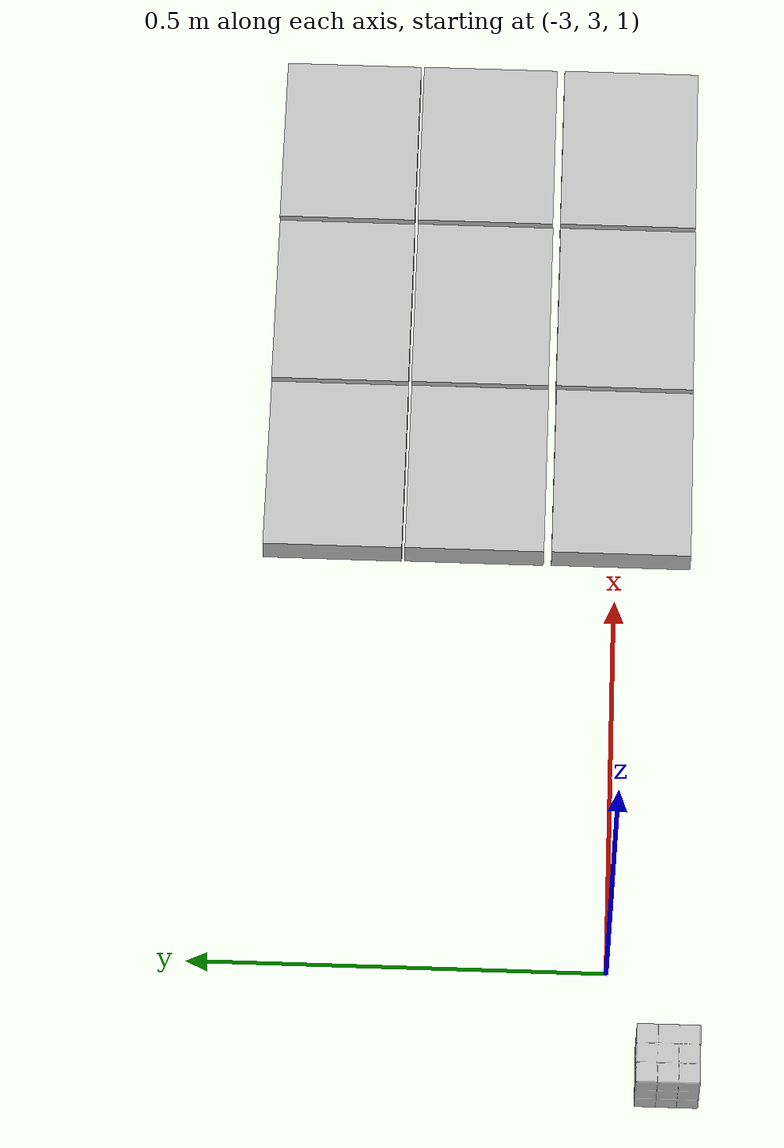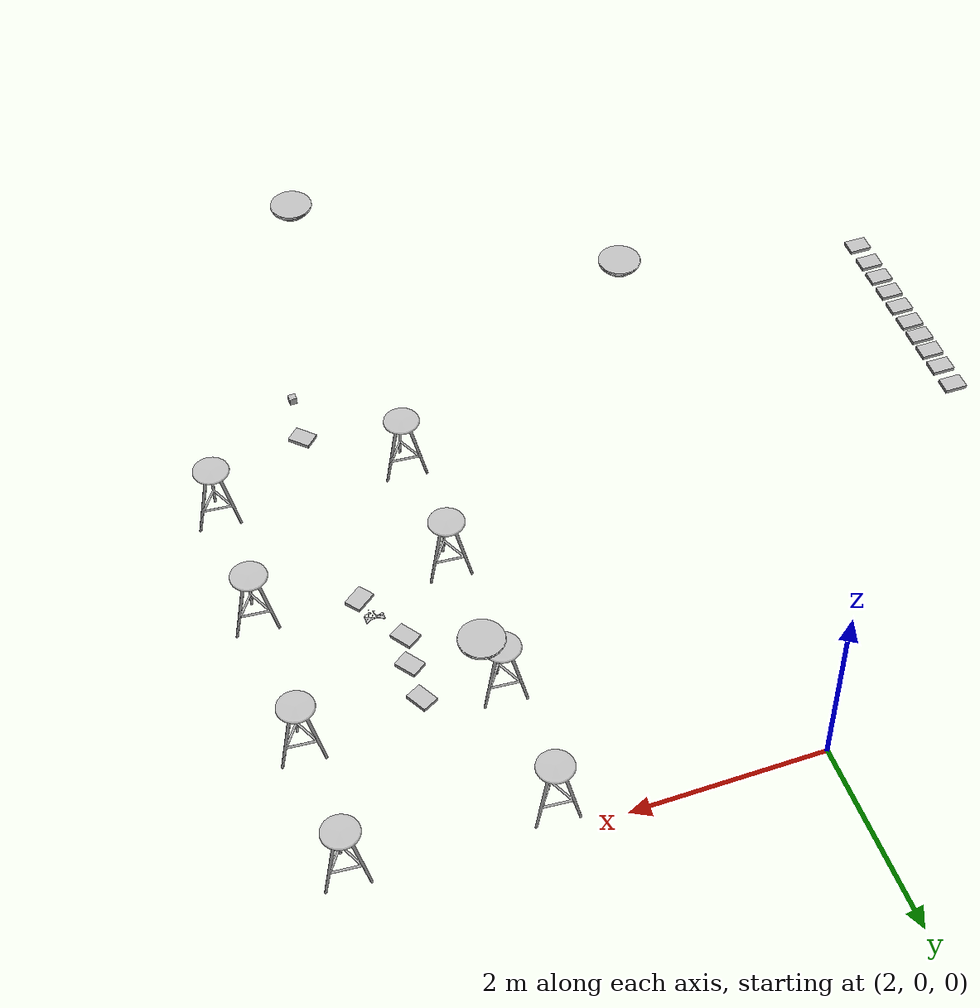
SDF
<sdf version="1.9">
 <world name="default">
  <gravity>0 0 -9.8</gravity>
  <magnetic_field>6e-06 2.3e-05 -4.2e-05</magnetic_field>
  <atmosphere type="adiabatic"/>
  <physics name="default_physics" type="dart">
   <max_step_size>0.001</max_step_size>
   <real_time_factor>1</real_time_factor>
   <real_time_update_rate>1000</real_time_update_rate>
  </physics>
  <scene>
   <ambient>0.4 0.4 0.4 1</ambient>
   <background>0.7 0.7 0.7 1</background>
   <shadows>1</shadows>
   <grid>false</grid>
   <origin_visual>false</origin_visual>
  </scene>
  <spherical_coordinates>
   <surface_model>EARTH_WGS84</surface_model>
   <latitude_deg>0</latitude_deg>
   <longitude_deg>0</longitude_deg>
   <elevation>0</elevation>
   <heading_deg>0</heading_deg>
  </spherical_coordinates>
  <model name="Bicycle_01_001">
   <include><uri>model://aws_robomaker_retail_Bicycle_01</uri></include>
   <pose>5.681248 -2.242451 0.931246 0.000002 -0.000024 0</pose>
  </model>
  <model name="BookE_01_001">
   <include><uri>model://aws_robomaker_retail_BookE_01</uri></include>
   <pose>5.476534 -1.932532 0.948933 0.000004 0.000001 -2.543521</pose>
  </model>
  <model name="BookE_01_002">
   <include><uri>model://aws_robomaker_retail_BookE_01</uri></include>
   <pose>-5.414000 3.330672 0.934015 -0.000001 -0.000001 -1.541094</pose>
  </model>
  <model name="BookE_01_003">
   <include><uri>model://aws_robomaker_retail_BookE_01</uri></include>
   <pose>5.552553 -1.214211 0.948933 0.000004 -0.000001 -2.654312</pose>
  </model>
  <model name="BookE_01_004">
   <include><uri>model://aws_robomaker_retail_BookE_01</uri></include>
   <pose>5.677231 -4.649203 0.946394 0.000100 0.000006 -2.355752</pose>
  </model>
  <model name="BookE_01_005">
   <include><uri>model://aws_robomaker_retail_BookE_01</uri></include>
   <pose>5.538150 -1.610317 0.948933 0 0 -2.526901</pose>
  </model>
  <model name="BookE_01_006">
   <include><uri>model://aws_robomaker_retail_BookE_01</uri></include>
   <pose>-1.889425 3.346395 1.054941 0 0 1.568157</pose>
  </model>
  <model name="BookE_01_007">
   <include><uri>model://aws_robomaker_retail_BookE_01</uri></include>
   <pose>-2.123726 3.346395 1.054941 0 0 1.568157</pose>
  </model>
  <model name="BookE_01_008">
   <include><uri>model://aws_robomaker_retail_BookE_01</uri></include>
   <pose>-5.315121 1.771952 0.955242 3.141243 -0.072268 -2.526906</pose>
  </model>
  <model name="BookE_01_009">
   <include><uri>model://aws_robomaker_retail_BookE_01</uri></include>
   <pose>1.170199 1.196251 343582.718718 0.002241 -0.001100 -0.623328</pose>
  </model>
  <model name="BookE_01_010">
   <include><uri>model://aws_robomaker_retail_BookE_01</uri></include>
   <pose>-5.503415 1.012063 0.941463 0 0 -1.568440</pose>
  </model>
  <model name="BookE_01_011">
   <include><uri>model://aws_robomaker_retail_BookE_01</uri></include>
   <pose>5.749231 -2.492018 0.948933 0.000002 0.000001 2.223394</pose>
  </model>
  <model name="BookE_01_012">
   <include><uri>model://aws_robomaker_retail_BookE_01</uri></include>
   <pose>-5.333584 0.186186 0.949316 -0.000001 -0.004549 -2.798485</pose>
  </model>
  <model name="BookE_01_013">
   <include><uri>model://aws_robomaker_retail_BookE_01</uri></include>
   <pose>-5.403906 2.650881 0.931119 0.021204 -0.000001 -2.355751</pose>
  </model>
  <model name="BookE_01_014">
   <include><uri>model://aws_robomaker_retail_BookE_01</uri></include>
   <pose>-1.889425 2.993687 1.054941 0 0 1.568157</pose>
  </model>
  <model name="BookE_01_015">
   <include><uri>model://aws_robomaker_retail_BookE_01</uri></include>
   <pose>-2.123726 2.993687 1.054941 0 0 1.568157</pose>
  </model>
  <model name="BookE_01_016">
   <include><uri>model://aws_robomaker_retail_BookE_01</uri></include>
   <pose>-2.357369 2.993687 1.054941 0 0 1.568157</pose>
  </model>
  <model name="BookE_01_017">
   <include><uri>model://aws_robomaker_retail_BookE_01</uri></include>
   <pose>-1.889425 3.172920 1.054941 0 0 1.568157</pose>
  </model>
  <model name="BookE_01_018">
   <include><uri>model://aws_robomaker_retail_BookE_01</uri></include>
   <pose>-2.123726 3.172920 1.054941 0 0 1.568157</pose>
  </model>
  <model name="BookE_01_019">
   <include><uri>model://aws_robomaker_retail_BookE_01</uri></include>
   <pose>-2.357369 3.172920 1.054941 0 0 1.568157</pose>
  </model>
  <model name="BookE_01_020">
   <include><uri>model://aws_robomaker_retail_BookE_01</uri></include>
   <pose>-0.694312 -3.530823 1.053825 0.000004 -0.000004 -1.573382</pose>
  </model>
  <model name="BookE_01_021">
   <include><uri>model://aws_robomaker_retail_BookE_01</uri></include>
   <pose>-0.694312 -3.760511 1.053825 0.000004 -0.000004 -1.573382</pose>
  </model>
  <model name="BookE_01_022">
   <include><uri>model://aws_robomaker_retail_BookE_01</uri></include>
   <pose>-0.694312 -3.980472 1.053825 0.000004 -0.000004 -1.573382</pose>
  </model>
  <model name="BookE_01_023">
   <include><uri>model://aws_robomaker_retail_BookE_01</uri></include>
   <pose>-0.694312 -4.221891 1.053825 0.000004 -0.000004 -1.573382</pose>
  </model>
  <model name="BookE_01_024">
   <include><uri>model://aws_robomaker_retail_BookE_01</uri></include>
   <pose>-0.694312 -4.461891 1.053825 0.000004 -0.000004 -1.573382</pose>
  </model>
  <model name="BookE_01_025">
   <include><uri>model://aws_robomaker_retail_BookE_01</uri></include>
   <pose>-0.694312 -4.701891 1.053825 0.000004 -0.000004 -1.573382</pose>
  </model>
  <model name="BookE_01_026">
   <include><uri>model://aws_robomaker_retail_BookE_01</uri></include>
   <pose>-0.694312 -4.941891 1.053825 0.000004 -0.000004 -1.573382</pose>
  </model>
  <model name="BookE_01_027">
   <include><uri>model://aws_robomaker_retail_BookE_01</uri></include>
   <pose>-0.694312 -5.221891 1.053825 0.000004 -0.000004 -1.573382</pose>
  </model>
  <model name="BookE_01_028">
   <include><uri>model://aws_robomaker_retail_BookE_01</uri></include>
   <pose>-0.694312 -3.291891 1.053825 0.000004 -0.000004 -1.573382</pose>
  </model>
  <model name="BookE_01_029">
   <include><uri>model://aws_robomaker_retail_BookE_01</uri></include>
   <pose>-0.694312 -3.021891 1.053825 0.000004 -0.000004 -1.573382</pose>
  </model>
  <model name="BookE_01_030">
   <include><uri>model://aws_robomaker_retail_BookE_01</uri></include>
   <pose>-2.357369 3.346395 1.054941 0 0 1.568157</pose>
  </model>
  <model name="ChairB_01_001">
   <include><uri>model://aws_robomaker_retail_ChairB_01</uri></include>
   <pose>6.6439554 -0.210457 0.0220513 0 0.006174 0.000088</pose>
  </model>
  <model name="ChairB_01_002">
   <include><uri>model://aws_robomaker_retail_ChairB_01</uri></include>
   <pose>6.6439554 -1.621987 0.0220513 0 0.006174 0.000088</pose>
  </model>
  <model name="ChairB_01_003">
   <include><uri>model://aws_robomaker_retail_ChairB_01</uri></include>
   <pose>6.6439554 -3.246633 0.0220513 0 0.006174 0.000088</pose>
  </model>
  <model name="ChairB_01_004">
   <include><uri>model://aws_robomaker_retail_ChairB_01</uri></include>
   <pose>6.6439554 -4.681600 0.0220513 0 0.006174 0.000088</pose>
  </model>
  <model name="ChairB_01_005">
   <include><uri>model://aws_robomaker_retail_ChairB_01</uri></include>
   <pose>4.653303 -0.210457 0.0220513 0 0.006174 0.000088</pose>
  </model>
  <model name="ChairB_01_006">
   <include><uri>model://aws_robomaker_retail_ChairB_01</uri></include>
   <pose>4.653303 -1.621987 0.0220513 0 0.006174 0.000088</pose>
  </model>
  <model name="ChairB_01_007">
   <include><uri>model://aws_robomaker_retail_ChairB_01</uri></include>
   <pose>4.653303 -3.246633 0.0220513 0 0.006174 0.000088</pose>
  </model>
  <model name="ChairB_01_008">
   <include><uri>model://aws_robomaker_retail_ChairB_01</uri></include>
   <pose>4.653303 -4.681600 0.0220513 0 0.006174 0.000088</pose>
  </model>
  <model name="ChairB_01_009">
   <include><uri>model://aws_robomaker_retail_ChairB_01</uri></include>
   <pose>-4.602947 5.021919 0.030259 -0.001073 -0.001935 0.001439</pose>
  </model>
  <model name="ChairB_01_010">
   <include><uri>model://aws_robomaker_retail_ChairB_01</uri></include>
   <pose>-6.109693 5.026245 0.027274 -0.001422 -0.002424 0.000176</pose>
  </model>
  <model name="ChairB_01_011">
   <include><uri>model://aws_robomaker_retail_ChairB_01</uri></include>
   <pose>-4.616166 3.276753 0.0321 -0.001068 -0.001938 0.000117</pose>
  </model>
  <model name="ChairB_01_012">
   <include><uri>model://aws_robomaker_retail_ChairB_01</uri></include>
   <pose>-6.090762 3.293415 0.029216 -0.001072 -0.001936 0.000119</pose>
  </model>
  <model name="ChairB_01_013">
   <include><uri>model://aws_robomaker_retail_ChairB_01</uri></include>
   <pose>-4.589604 1.815766 0.032459 0.001362 -0.001944 0.000145</pose>
  </model>
  <model name="ChairB_01_014">
   <include><uri>model://aws_robomaker_retail_ChairB_01</uri></include>
   <pose>-6.130103 1.798599 0.02944 0.001362 -0.001946 0.000105</pose>
  </model>
  <model name="ChairB_01_015">
   <include><uri>model://aws_robomaker_retail_ChairB_01</uri></include>
   <pose>-4.607505 0.203637 0.030218 0.001362 -0.001944 0.000163</pose>
  </model>
  <model name="ChairB_01_016">
   <include><uri>model://aws_robomaker_retail_ChairB_01</uri></include>
   <pose>-6.121492 0.195027 0.027272 0.001357 -0.001950 0.003291</pose>
  </model>
  <model name="Computer_01_001">
   <include><uri>model://aws_robomaker_retail_Computer_01</uri></include>
   <pose>0.284724 4.951315 1.08517 -0.004006 -0.000097 -0.010660</pose>
  </model>
  <model name="LightA_01_001">
   <include><uri>model://aws_robomaker_retail_LightA_01</uri></include>
   <pose>2.774418 -3.628150 3.150329 0 -0 0</pose>
  </model>
  <model name="LightA_01_002">
   <include><uri>model://aws_robomaker_retail_LightA_01</uri></include>
   <pose>5.383991 -5.383710 3.150328 0 -0 0</pose>
  </model>
  <model name="LightA_01_003">
   <include><uri>model://aws_robomaker_retail_LightA_01</uri></include>
   <pose>5.383991 0.041920 3.150328 0 -0 0</pose>
  </model>
  <model name="LightA_01_004">
   <include><uri>model://aws_robomaker_retail_LightA_01</uri></include>
   <pose>-3.210668 -5.383710 3.150328 0 -0 0</pose>
  </model>
  <model name="LightA_01_005">
   <include><uri>model://aws_robomaker_retail_LightA_01</uri></include>
   <pose>-3.271001 2.685925 3.150328 0 -0 0</pose>
  </model>
  <model name="MagicCube_01_001">
   <include><uri>model://aws_robomaker_retail_MagicCube_01</uri></include>
   <pose>5.667560 -5.174908 0.968597 1.559939 -0.000001 -1.555409</pose>
  </model>
  <model name="MagicCube_01_002">
   <include><uri>model://aws_robomaker_retail_MagicCube_01</uri></include>
   <pose>-5.383672 5.177522 0.968608 1.564128 -0.000001 -1.555410</pose>
  </model>
  <model name="MagicCube_01_003">
   <include><uri>model://aws_robomaker_retail_MagicCube_01</uri></include>
   <pose>-3.146512 2.928458 1.035654 0 0 0</pose>
  </model>
  <light name="RetailShop_CeilingLight_001" type="point">
   <pose>2.774418 -3.628150 3.178466 0 -0 0</pose>
   <diffuse>0.5 0.5 0.5 1</diffuse>
   <specular>0.1 0.1 0.1 1</specular>
   <attenuation>
    <range>20</range>
    <constant>0.32</constant>
    <linear>0.01</linear>
    <quadratic>0.03</quadratic>
   </attenuation>
   <cast_shadows>0</cast_shadows>
   <direction>0 0 -1</direction>
  </light>
  <light name="RetailShop_CeilingLight_002" type="point">
   <pose>5.383991 -5.383710 3.178466 0 -0 0</pose>
   <diffuse>0.5 0.5 0.5 1</diffuse>
   <specular>0.1 0.1 0.1 1</specular>
   <attenuation>
    <range>20</range>
    <constant>0.32</constant>
    <linear>0.01</linear>
    <quadratic>0.03</quadratic>
   </attenuation>
   <cast_shadows>0</cast_shadows>
   <direction>0 0 -1</direction>
  </light>
  <light name="RetailShop_CeilingLight_003" type="point">
   <pose>5.383991 0.041920 3.178466 0 -0 0</pose>
   <diffuse>0.5 0.5 0.5 1</diffuse>
   <specular>0.1 0.1 0.1 1</specular>
   <attenuation>
    <range>20</range>
    <constant>0.32</constant>
    <linear>0.01</linear>
    <quadratic>0.03</quadratic>
   </attenuation>
   <cast_shadows>0</cast_shadows>
   <direction>0 0 -1</direction>
  </light>
  <light name="RetailShop_CeilingLight_004" type="point">
   <pose>-3.210668 -5.383710 3.178466 0 -0 0</pose>
   <diffuse>0.5 0.5 0.5 1</diffuse>
   <specular>0.1 0.1 0.1 1</specular>
   <attenuation>
    <range>20</range>
    <constant>0.32</constant>
    <linear>0.01</linear>
    <quadratic>0.03</quadratic>
   </attenuation>
   <cast_shadows>0</cast_shadows>
   <direction>0 0 -1</direction>
  </light>
  <light name="RetailShop_CeilingLight_005" type="point">
   <pose>-3.271001 2.685925 3.178466 0 -0 0</pose>
   <diffuse>0.5 0.5 0.5 1</diffuse>
   <specular>0.1 0.1 0.1 1</specular>
   <attenuation>
    <range>20</range>
    <constant>0.32</constant>
    <linear>0.01</linear>
    <quadratic>0.03</quadratic>
   </attenuation>
   <cast_shadows>0</cast_shadows>
   <direction>0 0 -1</direction>
  </light>
  <light name="RetailShop_CeilingLight_006" type="point">
   <pose>1.493200 4.692372 3.178466 0 -0 0</pose>
   <diffuse>0.5 0.5 0.5 1</diffuse>
   <specular>0.1 0.1 0.1 1</specular>
   <attenuation>
    <range>20</range>
    <constant>0.32</constant>
    <linear>0.01</linear>
    <quadratic>0.03</quadratic>
   </attenuation>
   <cast_shadows>0</cast_shadows>
   <direction>0 0 -1</direction>
  </light>
 </world>
</sdf>

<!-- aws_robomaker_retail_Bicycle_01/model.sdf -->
<sdf version='1.9'>
  <model name="aws_robomaker_retail_Bicycle_01">
    <link name="link">
      <inertial>
        <mass>0.04</mass>
        <inertia>
          <ixx>0.10</ixx>
          <ixy>0</ixy>
          <ixz>0</ixz>
          <iyy>0.10</iyy>
          <iyz>0</iyz>
          <izz>0.01</izz>
        </inertia>
      </inertial>
      <collision name="collision">
        <geometry>
          <mesh>
            <uri>model://aws_robomaker_retail_Bicycle_01/meshes/aws_Bicycle_01_collision.DAE</uri>
            <scale>1 1 1</scale>
          </mesh>
        </geometry>
      </collision>
      <visual name="visual">
	    <geometry>
          <mesh>
            <uri>model://aws_robomaker_retail_Bicycle_01/meshes/aws_Bicycle_01_visual.DAE</uri>
          </mesh>
        </geometry>
        <meta>
          <layer>1</layer>
        </meta>
      </visual>
    </link>
      <static>1</static>
  </model>
</sdf>

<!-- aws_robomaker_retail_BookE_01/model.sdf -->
<sdf version='1.9'>
  <model name="aws_robomaker_retail_BookE_01">
    <link name="link">
      <inertial>
        <mass>1</mass>
        <inertia>
          <ixy>0</ixy>
          <ixz>0</ixz>
          <iyz>0</iyz>
          <ixx>0.0666</ixx>
          <iyy>0.0346</iyy>
          <izz>0.0986</izz>
        </inertia>
      </inertial>
      <collision name="collision">
        <geometry>
          <mesh>
            <uri>model://aws_robomaker_retail_BookE_01/meshes/aws_BookE_01_collision.DAE</uri>
            <scale>1 1 1</scale>
          </mesh>
        </geometry>
      </collision>
      <visual name="visual">
	    <geometry>
          <mesh>
            <uri>model://aws_robomaker_retail_BookE_01/meshes/aws_BookE_01_visual.DAE</uri>
          </mesh>
        </geometry>
        <meta>
          <layer>1</layer>
        </meta>
      </visual>
    </link>
    <!-- Keeping this book model static to keep the
         scene composition until physics is stabilized-->
    <static>1</static>
  </model>
</sdf>

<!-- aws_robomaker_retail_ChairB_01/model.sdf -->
<sdf version='1.9'>
  <model name="aws_robomaker_retail_ChairB_01">
    <link name="link">
      <inertial>
        <mass>3</mass>
        <inertia>
          <ixx>0.188185</ixx>
          <ixy>0</ixy>
          <ixz>0</ixz>
          <iyy>0.1906168</iyy>
          <iyz>0</iyz>
          <izz>0.10099930</izz>
        </inertia>
      </inertial>
      <collision name="collision">
        <geometry>
          <mesh>
            <uri>model://aws_robomaker_retail_ChairB_01/meshes/aws_ChairB_01_collision.DAE</uri>
            <scale>1 1 1</scale>
          </mesh>
        </geometry>
      </collision>
      <visual name="visual">
	    <geometry>
          <mesh>
            <uri>model://aws_robomaker_retail_ChairB_01/meshes/aws_ChairB_01_visual.DAE</uri>
          </mesh>
        </geometry>
        <meta>
          <layer>1</layer>
        </meta>
      </visual>
</link>
      <static>1</static>
  </model>
</sdf>

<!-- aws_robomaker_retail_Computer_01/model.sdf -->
<sdf version='1.9'>
  <model name="aws_robomaker_retail_Computer_01">
    <link name="link">
      <inertial>
        <mass>3</mass>
        <inertia>
          <ixx>0.120785</ixx>
          <ixy>0</ixy>
          <ixz>0</ixz>
          <iyy>0.0765512</iyy>
          <iyz>0</iyz>
          <izz>0.1004711</izz>
        </inertia>
      </inertial>
      <collision name="collision">
        <geometry>
          <mesh>
            <uri>model://aws_robomaker_retail_Computer_01/meshes/aws_Computer_01_collision.DAE</uri>
            <scale>1 1 1</scale>
          </mesh>
        </geometry>
      </collision>
      <visual name="visual">
	    <geometry>
          <mesh>
            <uri>model://aws_robomaker_retail_Computer_01/meshes/aws_Computer_01_visual.DAE</uri>
          </mesh>
        </geometry>
        <meta>
          <layer>1</layer>
        </meta>
      </visual>
    </link>
      <static>1</static>
  </model>
</sdf>

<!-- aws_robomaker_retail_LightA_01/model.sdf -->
<sdf version='1.9'>
  <model name="aws_robomaker_retail_LightA_01">
    <link name="link">
      <inertial>
        <mass>1</mass>
      </inertial>
      <collision name="collision">
        <geometry>
          <mesh>
            <uri>model://aws_robomaker_retail_LightA_01/meshes/aws_LightA_01_collision.DAE</uri>
            <scale>1 1 1</scale>
          </mesh>
        </geometry>
      </collision>
      <visual name="visual">
	    <geometry>
          <mesh>
            <uri>model://aws_robomaker_retail_LightA_01/meshes/aws_LightA_01_visual.DAE</uri>
          </mesh>
        </geometry>
        <meta>
          <layer>3</layer>
        </meta>
      </visual>
    </link>
	<static>1</static>
  </model>
</sdf>

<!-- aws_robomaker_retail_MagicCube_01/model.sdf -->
<sdf version='1.9'>
  <model name="aws_robomaker_retail_MagicCube_01">
    <link name="link">
      <inertial>
        <mass>0.2</mass>
        <inertia>
          <ixx>0.01</ixx>
          <ixy>0</ixy>
          <ixz>0</ixz>
          <iyy>0.01</iyy>
          <iyz>0</iyz>
          <izz>0.01</izz>
        </inertia>
      </inertial>
      <collision name="collision">
        <geometry>
          <mesh>
            <uri>model://aws_robomaker_retail_MagicCube_01/meshes/aws_MagicCube_01_collision.DAE</uri>
            <scale>1 1 1</scale>
          </mesh>
        </geometry>
      </collision>
      <visual name="visual">
	    <geometry>
          <mesh>
            <uri>model://aws_robomaker_retail_MagicCube_01/meshes/aws_MagicCube_01_visual.DAE</uri>
          </mesh>
        </geometry>
        <meta>
          <layer>1</layer>
        </meta>
      </visual>
    </link>
    <static>1</static>
  </model>
</sdf>
